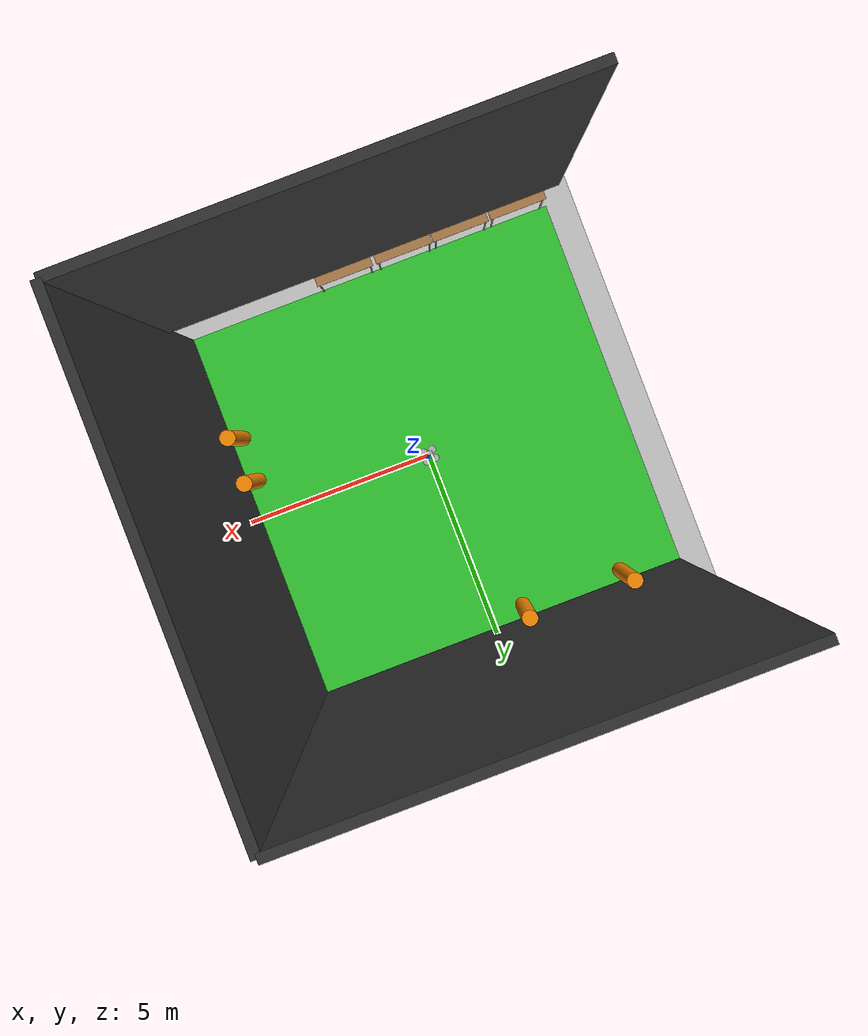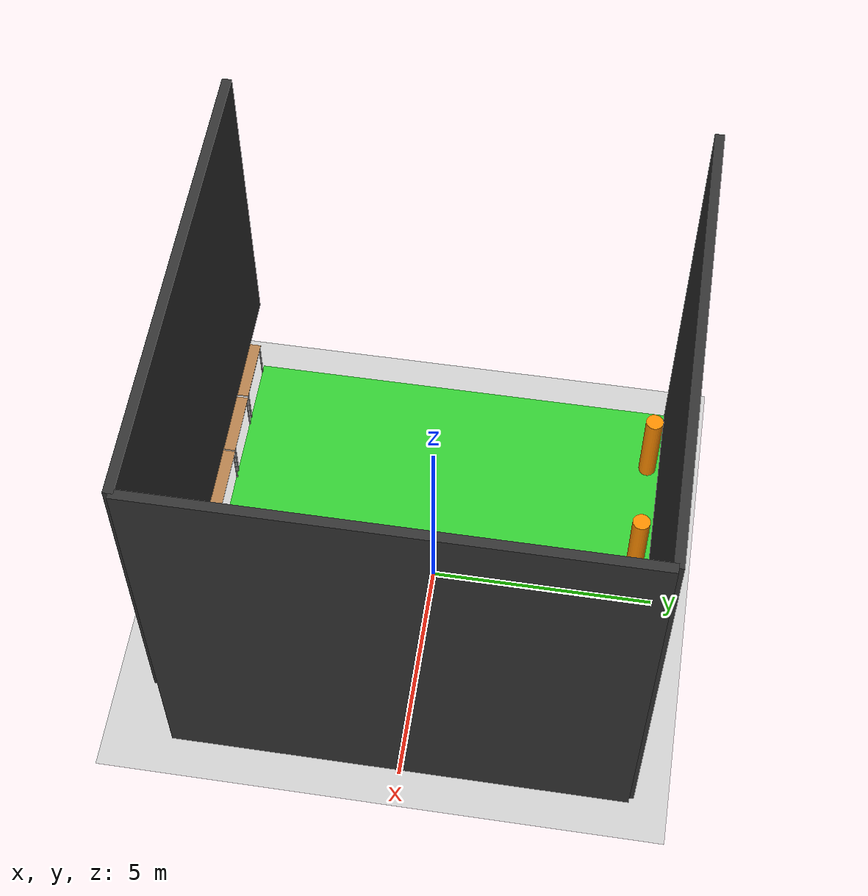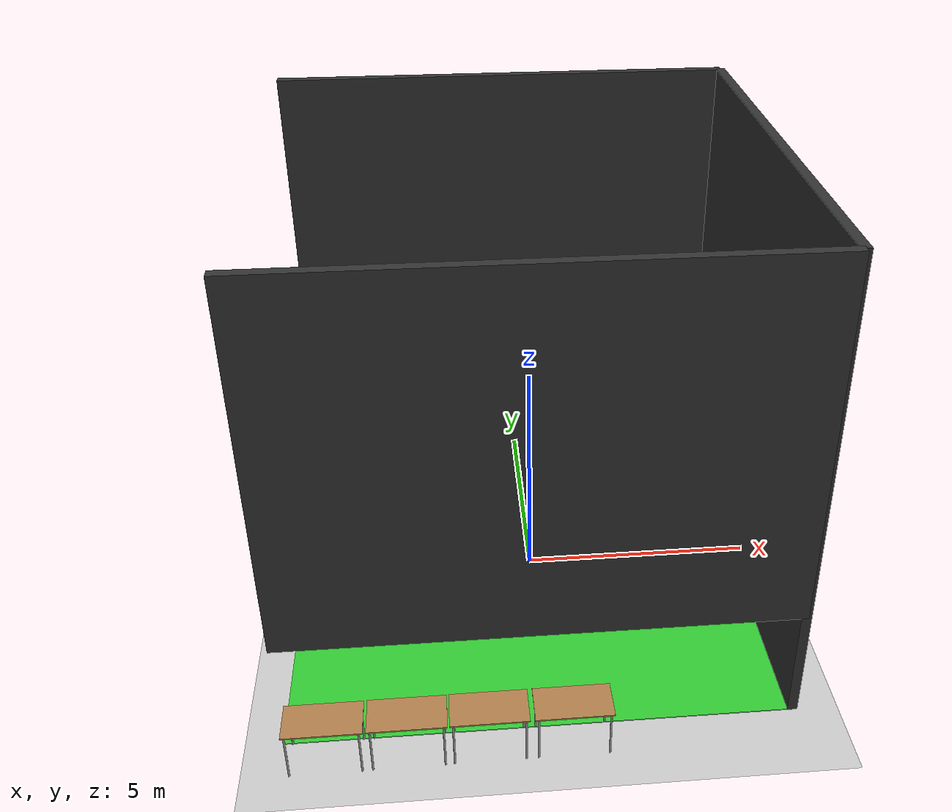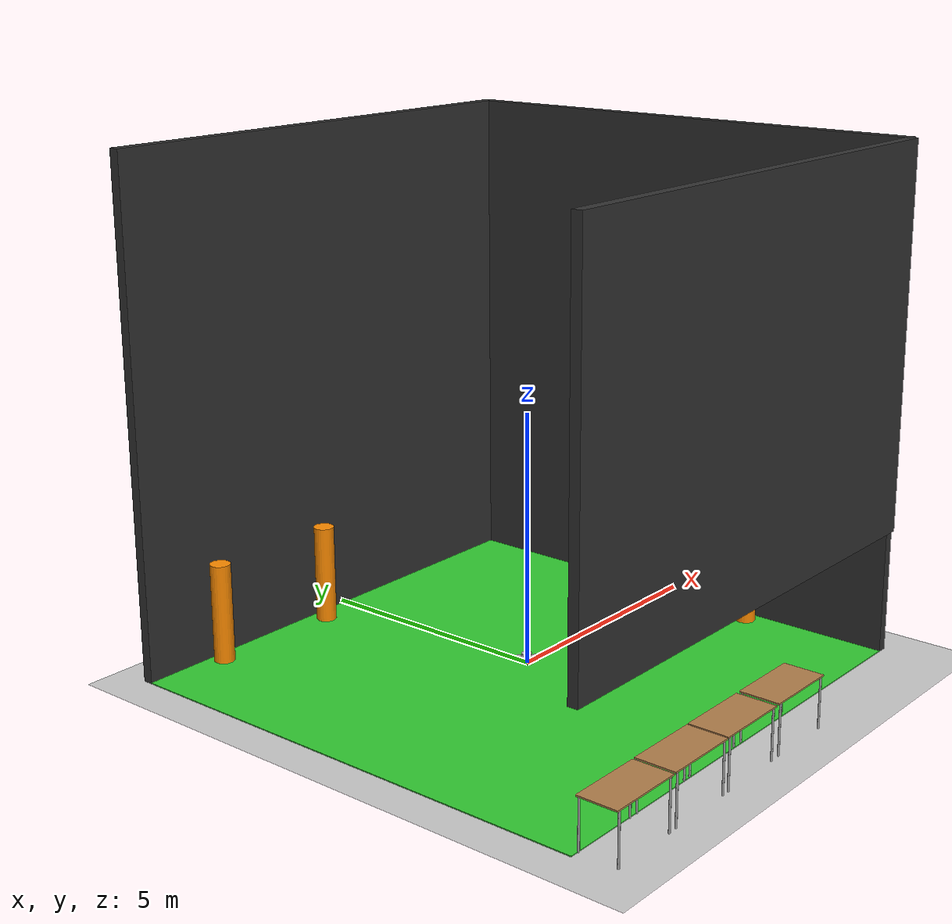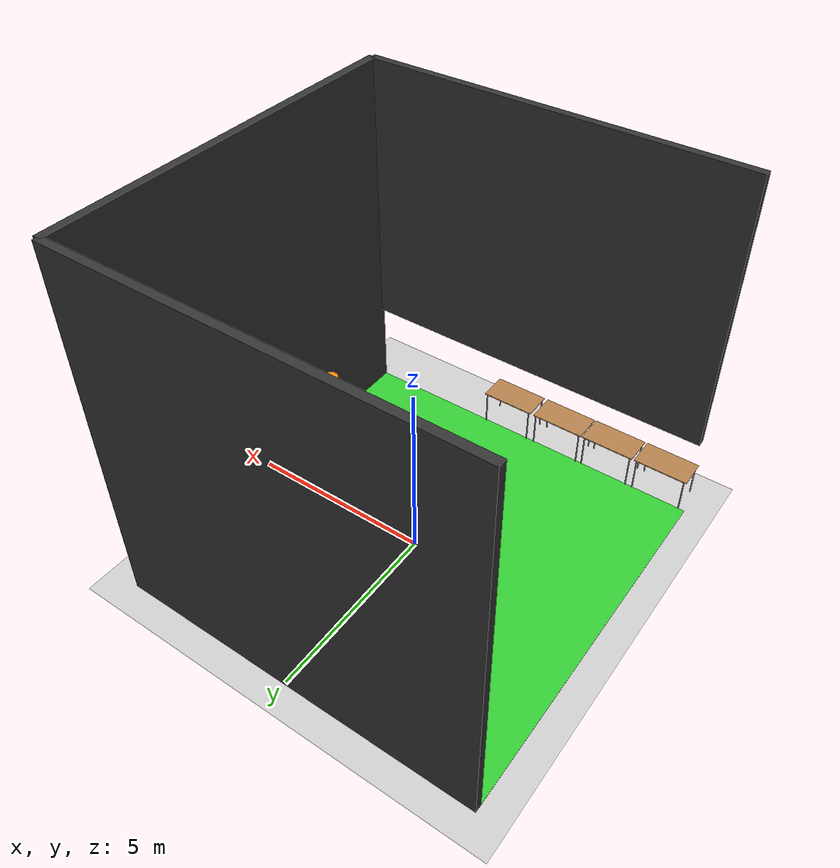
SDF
<sdf version="1.6">
 <world name="default">
  <physics type="ode">
   <max_step_size>0.001</max_step_size>
   <real_time_update_rate>0</real_time_update_rate>
   <ode><solver><type>quick</type><iters>1</iters></solver></ode>
  </physics>
  <scene><ambient>0.4 0.4 0.4 1</ambient><background>0.7 0.7 0.7 1</background><shadows>1</shadows></scene>
  <light name="sun" type="directional">
   <cast_shadows>0</cast_shadows>
   <pose>0 0 10 0 -0 0</pose>
   <diffuse>0.8 0.8 0.8 1</diffuse>
   <specular>0.1 0.1 0.1 1</specular>
   <attenuation>
    <range>1000</range>
    <constant>0.9</constant>
    <linear>0.01</linear>
    <quadratic>0.001</quadratic>
   </attenuation>
   <direction>-0.5 0.5 -1</direction>
  </light>
  <spherical_coordinates>
   <surface_model>EARTH_WGS84</surface_model>
   <latitude_deg>51.990634</latitude_deg>
   <longitude_deg>4.376789</longitude_deg>
   <elevation>0</elevation>
   <heading_deg>150</heading_deg>
  </spherical_coordinates>
  <include><uri>model://ardrone</uri></include>
  <model name="ground_plane">
   <static>1</static>
   <link name="link">
    <collision name="collision">
     <geometry><plane><normal>0 0 1</normal><size>100 100</size></plane></geometry>
     <surface><friction><ode><mu>100</mu><mu2>50</mu2></ode></friction></surface>
    </collision>
    <visual name="visual">
     <cast_shadows>0</cast_shadows>
     <geometry><plane><normal>0 0 1</normal><size>100 100</size></plane></geometry>
     <material>
      <script><uri>file://media/materials/scripts/gazebo.material</uri><name>Gazebo/Grey</name></script>
     </material>
    </visual>
   </link>
  </model>
  <gravity>0 0 -9.8</gravity>
  <magnetic_field>6e-06 2.3e-05 -4.2e-05</magnetic_field>
  <atmosphere type="adiabatic"/>
  <model name="table">
   <static>1</static>
   <link name="link">
    <collision name="surface">
     <pose>0 0 1 0 -0 0</pose>
     <geometry><box><size>1.5 0.8 0.03</size></box></geometry>
     <surface><friction><ode><mu>0.6</mu><mu2>0.6</mu2></ode></friction></surface>
    </collision>
    <visual name="visual1">
     <pose>0 0 1 0 -0 0</pose>
     <geometry><box><size>1.5 0.8 0.03</size></box></geometry>
     <material>
      <script><uri>file://media/materials/scripts/gazebo.material</uri><name>Gazebo/Wood</name></script>
     </material>
    </visual>
    <collision name="front_left_leg">
     <pose>0.68 0.38 0.5 0 -0 0</pose>
     <geometry><cylinder><radius>0.02</radius><length>1</length></cylinder></geometry>
    </collision>
    <visual name="front_left_leg">
     <pose>0.68 0.38 0.5 0 -0 0</pose>
     <geometry><cylinder><radius>0.02</radius><length>1</length></cylinder></geometry>
     <material>
      <script><uri>file://media/materials/scripts/gazebo.material</uri><name>Gazebo/Grey</name></script>
     </material>
    </visual>
    <collision name="front_right_leg">
     <pose>0.68 -0.38 0.5 0 -0 0</pose>
     <geometry><cylinder><radius>0.02</radius><length>1</length></cylinder></geometry>
    </collision>
    <visual name="front_right_leg">
     <pose>0.68 -0.38 0.5 0 -0 0</pose>
     <geometry><cylinder><radius>0.02</radius><length>1</length></cylinder></geometry>
     <material>
      <script><uri>file://media/materials/scripts/gazebo.material</uri><name>Gazebo/Grey</name></script>
     </material>
    </visual>
    <collision name="back_right_leg">
     <pose>-0.68 -0.38 0.5 0 -0 0</pose>
     <geometry><cylinder><radius>0.02</radius><length>1</length></cylinder></geometry>
    </collision>
    <visual name="back_right_leg">
     <pose>-0.68 -0.38 0.5 0 -0 0</pose>
     <geometry><cylinder><radius>0.02</radius><length>1</length></cylinder></geometry>
     <material>
      <script><uri>file://media/materials/scripts/gazebo.material</uri><name>Gazebo/Grey</name></script>
     </material>
    </visual>
    <collision name="back_left_leg">
     <pose>-0.68 0.38 0.5 0 -0 0</pose>
     <geometry><cylinder><radius>0.02</radius><length>1</length></cylinder></geometry>
    </collision>
    <visual name="back_left_leg">
     <pose>-0.68 0.38 0.5 0 -0 0</pose>
     <geometry><cylinder><radius>0.02</radius><length>1</length></cylinder></geometry>
     <material>
      <script><uri>file://media/materials/scripts/gazebo.material</uri><name>Gazebo/Grey</name></script>
     </material>
    </visual>
   </link>
   <pose>-4.32267 -5.41265 0 0 -0 0</pose>
  </model>
  <model name="table_0">
   <static>1</static>
   <link name="link">
    <collision name="surface">
     <pose>0 0 1 0 -0 0</pose>
     <geometry><box><size>1.5 0.8 0.03</size></box></geometry>
     <surface><friction><ode><mu>0.6</mu><mu2>0.6</mu2></ode></friction></surface>
    </collision>
    <visual name="visual1">
     <pose>0 0 1 0 -0 0</pose>
     <geometry><box><size>1.5 0.8 0.03</size></box></geometry>
     <material>
      <script><uri>file://media/materials/scripts/gazebo.material</uri><name>Gazebo/Wood</name></script>
     </material>
    </visual>
    <collision name="front_left_leg">
     <pose>0.68 0.38 0.5 0 -0 0</pose>
     <geometry><cylinder><radius>0.02</radius><length>1</length></cylinder></geometry>
    </collision>
    <visual name="front_left_leg">
     <pose>0.68 0.38 0.5 0 -0 0</pose>
     <geometry><cylinder><radius>0.02</radius><length>1</length></cylinder></geometry>
     <material>
      <script><uri>file://media/materials/scripts/gazebo.material</uri><name>Gazebo/Grey</name></script>
     </material>
    </visual>
    <collision name="front_right_leg">
     <pose>0.68 -0.38 0.5 0 -0 0</pose>
     <geometry><cylinder><radius>0.02</radius><length>1</length></cylinder></geometry>
    </collision>
    <visual name="front_right_leg">
     <pose>0.68 -0.38 0.5 0 -0 0</pose>
     <geometry><cylinder><radius>0.02</radius><length>1</length></cylinder></geometry>
     <material>
      <script><uri>file://media/materials/scripts/gazebo.material</uri><name>Gazebo/Grey</name></script>
     </material>
    </visual>
    <collision name="back_right_leg">
     <pose>-0.68 -0.38 0.5 0 -0 0</pose>
     <geometry><cylinder><radius>0.02</radius><length>1</length></cylinder></geometry>
    </collision>
    <visual name="back_right_leg">
     <pose>-0.68 -0.38 0.5 0 -0 0</pose>
     <geometry><cylinder><radius>0.02</radius><length>1</length></cylinder></geometry>
     <material>
      <script><uri>file://media/materials/scripts/gazebo.material</uri><name>Gazebo/Grey</name></script>
     </material>
    </visual>
    <collision name="back_left_leg">
     <pose>-0.68 0.38 0.5 0 -0 0</pose>
     <geometry><cylinder><radius>0.02</radius><length>1</length></cylinder></geometry>
    </collision>
    <visual name="back_left_leg">
     <pose>-0.68 0.38 0.5 0 -0 0</pose>
     <geometry><cylinder><radius>0.02</radius><length>1</length></cylinder></geometry>
     <material>
      <script><uri>file://media/materials/scripts/gazebo.material</uri><name>Gazebo/Grey</name></script>
     </material>
    </visual>
   </link>
   <pose>-2.76277 -5.40361 0 0 -0 0</pose>
  </model>
  <model name="table_1">
   <static>1</static>
   <link name="link">
    <collision name="surface">
     <pose>0 0 1 0 -0 0</pose>
     <geometry><box><size>1.5 0.8 0.03</size></box></geometry>
     <surface><friction><ode><mu>0.6</mu><mu2>0.6</mu2></ode></friction></surface>
    </collision>
    <visual name="visual1">
     <pose>0 0 1 0 -0 0</pose>
     <geometry><box><size>1.5 0.8 0.03</size></box></geometry>
     <material>
      <script><uri>file://media/materials/scripts/gazebo.material</uri><name>Gazebo/Wood</name></script>
     </material>
    </visual>
    <collision name="front_left_leg">
     <pose>0.68 0.38 0.5 0 -0 0</pose>
     <geometry><cylinder><radius>0.02</radius><length>1</length></cylinder></geometry>
    </collision>
    <visual name="front_left_leg">
     <pose>0.68 0.38 0.5 0 -0 0</pose>
     <geometry><cylinder><radius>0.02</radius><length>1</length></cylinder></geometry>
     <material>
      <script><uri>file://media/materials/scripts/gazebo.material</uri><name>Gazebo/Grey</name></script>
     </material>
    </visual>
    <collision name="front_right_leg">
     <pose>0.68 -0.38 0.5 0 -0 0</pose>
     <geometry><cylinder><radius>0.02</radius><length>1</length></cylinder></geometry>
    </collision>
    <visual name="front_right_leg">
     <pose>0.68 -0.38 0.5 0 -0 0</pose>
     <geometry><cylinder><radius>0.02</radius><length>1</length></cylinder></geometry>
     <material>
      <script><uri>file://media/materials/scripts/gazebo.material</uri><name>Gazebo/Grey</name></script>
     </material>
    </visual>
    <collision name="back_right_leg">
     <pose>-0.68 -0.38 0.5 0 -0 0</pose>
     <geometry><cylinder><radius>0.02</radius><length>1</length></cylinder></geometry>
    </collision>
    <visual name="back_right_leg">
     <pose>-0.68 -0.38 0.5 0 -0 0</pose>
     <geometry><cylinder><radius>0.02</radius><length>1</length></cylinder></geometry>
     <material>
      <script><uri>file://media/materials/scripts/gazebo.material</uri><name>Gazebo/Grey</name></script>
     </material>
    </visual>
    <collision name="back_left_leg">
     <pose>-0.68 0.38 0.5 0 -0 0</pose>
     <geometry><cylinder><radius>0.02</radius><length>1</length></cylinder></geometry>
    </collision>
    <visual name="back_left_leg">
     <pose>-0.68 0.38 0.5 0 -0 0</pose>
     <geometry><cylinder><radius>0.02</radius><length>1</length></cylinder></geometry>
     <material>
      <script><uri>file://media/materials/scripts/gazebo.material</uri><name>Gazebo/Grey</name></script>
     </material>
    </visual>
   </link>
   <pose>-1.22632 -5.39461 0 0 -0 0</pose>
  </model>
  <model name="table_2">
   <static>1</static>
   <link name="link">
    <collision name="surface">
     <pose>0 0 1 0 -0 0</pose>
     <geometry><box><size>1.5 0.8 0.03</size></box></geometry>
     <surface><friction><ode><mu>0.6</mu><mu2>0.6</mu2></ode></friction></surface>
    </collision>
    <visual name="visual1">
     <pose>0 0 1 0 -0 0</pose>
     <geometry><box><size>1.5 0.8 0.03</size></box></geometry>
     <material>
      <script><uri>file://media/materials/scripts/gazebo.material</uri><name>Gazebo/Wood</name></script>
     </material>
    </visual>
    <collision name="front_left_leg">
     <pose>0.68 0.38 0.5 0 -0 0</pose>
     <geometry><cylinder><radius>0.02</radius><length>1</length></cylinder></geometry>
    </collision>
    <visual name="front_left_leg">
     <pose>0.68 0.38 0.5 0 -0 0</pose>
     <geometry><cylinder><radius>0.02</radius><length>1</length></cylinder></geometry>
     <material>
      <script><uri>file://media/materials/scripts/gazebo.material</uri><name>Gazebo/Grey</name></script>
     </material>
    </visual>
    <collision name="front_right_leg">
     <pose>0.68 -0.38 0.5 0 -0 0</pose>
     <geometry><cylinder><radius>0.02</radius><length>1</length></cylinder></geometry>
    </collision>
    <visual name="front_right_leg">
     <pose>0.68 -0.38 0.5 0 -0 0</pose>
     <geometry><cylinder><radius>0.02</radius><length>1</length></cylinder></geometry>
     <material>
      <script><uri>file://media/materials/scripts/gazebo.material</uri><name>Gazebo/Grey</name></script>
     </material>
    </visual>
    <collision name="back_right_leg">
     <pose>-0.68 -0.38 0.5 0 -0 0</pose>
     <geometry><cylinder><radius>0.02</radius><length>1</length></cylinder></geometry>
    </collision>
    <visual name="back_right_leg">
     <pose>-0.68 -0.38 0.5 0 -0 0</pose>
     <geometry><cylinder><radius>0.02</radius><length>1</length></cylinder></geometry>
     <material>
      <script><uri>file://media/materials/scripts/gazebo.material</uri><name>Gazebo/Grey</name></script>
     </material>
    </visual>
    <collision name="back_left_leg">
     <pose>-0.68 0.38 0.5 0 -0 0</pose>
     <geometry><cylinder><radius>0.02</radius><length>1</length></cylinder></geometry>
    </collision>
    <visual name="back_left_leg">
     <pose>-0.68 0.38 0.5 0 -0 0</pose>
     <geometry><cylinder><radius>0.02</radius><length>1</length></cylinder></geometry>
     <material>
      <script><uri>file://media/materials/scripts/gazebo.material</uri><name>Gazebo/Grey</name></script>
     </material>
    </visual>
   </link>
   <pose>0.369055 -5.38977 0 0 -0 0</pose>
  </model>
  <model name="orange_pole">
   <pose>-3.60609 4.59513 1 0 -0 0</pose>
   <static>1</static>
   <link name="link">
    <inertial>
     <mass>1</mass>
     <inertia><ixx>0.083</ixx><ixy>0</ixy><ixz>0</ixz><iyy>0.083</iyy><iyz>0</iyz><izz>0.083</izz></inertia>
    </inertial>
    <collision name="collision">
     <geometry><cylinder><radius>0.3</radius><length>2</length></cylinder></geometry>
    </collision>
    <visual name="visual">
     <geometry><cylinder><radius>0.2</radius><length>2</length></cylinder></geometry>
     <material>
      <ambient>1 0.55 0 1</ambient>
      <diffuse>1 0.55 0 1</diffuse>
      <specular>0.1 0.1 0.1 1</specular>
      <emissive>0 0 0 0</emissive>
     </material>
    </visual>
   </link>
  </model>
  <model name="orange_pole_0">
   <pose>-0.897962 4.54077 1 0 -0 0</pose>
   <static>1</static>
   <link name="link">
    <inertial>
     <mass>1</mass>
     <inertia><ixx>0.083</ixx><ixy>0</ixy><ixz>0</ixz><iyy>0.083</iyy><iyz>0</iyz><izz>0.083</izz></inertia>
    </inertial>
    <collision name="collision">
     <geometry><cylinder><radius>0.3</radius><length>2</length></cylinder></geometry>
    </collision>
    <visual name="visual">
     <geometry><cylinder><radius>0.2</radius><length>2</length></cylinder></geometry>
     <material>
      <ambient>1 0.55 0 1</ambient>
      <diffuse>1 0.55 0 1</diffuse>
      <specular>0.1 0.1 0.1 1</specular>
      <emissive>0 0 0 0</emissive>
     </material>
    </visual>
   </link>
  </model>
  <model name="orange_pole_1">
   <pose>4.41201 -2.15118 1 0 -0 0</pose>
   <static>1</static>
   <link name="link">
    <inertial>
     <mass>1</mass>
     <inertia><ixx>0.083</ixx><ixy>0</ixy><ixz>0</ixz><iyy>0.083</iyy><iyz>0</iyz><izz>0.083</izz></inertia>
    </inertial>
    <collision name="collision">
     <geometry><cylinder><radius>0.3</radius><length>2</length></cylinder></geometry>
    </collision>
    <visual name="visual">
     <geometry><cylinder><radius>0.2</radius><length>2</length></cylinder></geometry>
     <material>
      <ambient>1 0.55 0 1</ambient>
      <diffuse>1 0.55 0 1</diffuse>
      <specular>0.1 0.1 0.1 1</specular>
      <emissive>0 0 0 0</emissive>
     </material>
    </visual>
   </link>
  </model>
  <model name="orange_pole_2">
   <pose>4.42776 -0.974296 1 0 -0 0</pose>
   <static>1</static>
   <link name="link">
    <inertial>
     <mass>1</mass>
     <inertia><ixx>0.083</ixx><ixy>0</ixy><ixz>0</ixz><iyy>0.083</iyy><iyz>0</iyz><izz>0.083</izz></inertia>
    </inertial>
    <collision name="collision">
     <geometry><cylinder><radius>0.3</radius><length>2</length></cylinder></geometry>
    </collision>
    <visual name="visual">
     <geometry><cylinder><radius>0.2</radius><length>2</length></cylinder></geometry>
     <material>
      <ambient>1 0.55 0 1</ambient>
      <diffuse>1 0.55 0 1</diffuse>
      <specular>0.1 0.1 0.1 1</specular>
      <emissive>0 0 0 0</emissive>
     </material>
    </visual>
   </link>
  </model>
  <model name="cyberzoo">
   <static>1</static>
   <pose>-0.184743 -0.031412 0 0 -0 0</pose>
   <link name="floor">
    <pose>0 0 0.01 0 -0 0</pose>
    <visual name="visual">
     <geometry><box><size>10 10 0.02</size></box></geometry>
     <material>
      <ambient>0 0 0 1</ambient>
      <diffuse>0.2 0.8 0.2 1</diffuse>
      <specular>0.2 0.2 0.2 1</specular>
      <emissive>0 0 0 0</emissive>
     </material>
    </visual>
    <collision name="collision"><geometry><box><size>10 10 0.02</size></box></geometry></collision>
   </link>
   <link name="north_wall">
    <pose>0 5 5 0 -0 0</pose>
    <visual name="visual">
     <geometry><box><size>10 0.2 10</size></box></geometry>
     <material>
      <ambient>0 0 0 1</ambient>
      <diffuse>0.2 0.2 0.2 1</diffuse>
      <specular>0 0 0 1</specular>
      <emissive>0 0 0 0</emissive>
     </material>
    </visual>
    <collision name="collision"><geometry><box><size>10 0.2 10</size></box></geometry></collision>
   </link>
   <link name="east_wall">
    <pose>5 0 5 0 -0 0</pose>
    <visual name="visual">
     <geometry><box><size>0.2 10 10</size></box></geometry>
     <material>
      <ambient>0 0 0 1</ambient>
      <diffuse>0.2 0.2 0.2 1</diffuse>
      <specular>0 0 0 1</specular>
      <emissive>0 0 0 0</emissive>
     </material>
    </visual>
    <collision name="collision"><geometry><box><size>0.2 10 10</size></box></geometry></collision>
   </link>
   <link name="south_wall">
    <pose>0 -5 6.25 0 -0 0</pose>
    <visual name="visual">
     <geometry><box><size>10 0.2 7.5</size></box></geometry>
     <material>
      <ambient>0 0 0 1</ambient>
      <diffuse>0.2 0.2 0.2 1</diffuse>
      <specular>0 0 0 1</specular>
      <emissive>0 0 0 0</emissive>
     </material>
    </visual>
    <collision name="collision"><geometry><box><size>10 0.2 7.5</size></box></geometry></collision>
   </link>
  </model>
 </world>
</sdf>

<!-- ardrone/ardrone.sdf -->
<sdf version='1.9'>
  <model name="ardrone">
    <pose>0 0 .1 0 0 0</pose>

    <link name="chassis">

      <inertial><!-- Converted to SI from Paparazzi's ARDrone model for JSBsim -->
        <mass>0.4</mass>
        <inertia>
          <ixx> 0.00678 </ixx>
          <iyy> 0.00678 </iyy>
          <izz> 0.01356 </izz>
          <ixy> 0. </ixy>
          <ixz> 0. </ixz>
          <iyz> 0. </iyz>
        </inertia>
      </inertial>

      <collision name="collision">
        <geometry>
          <box>
            <size>0.4 0.4 0.05</size>
          </box>
        </geometry>
      </collision>

      <visual name="visual">
        <geometry>
          <box>
            <size>0.2 0.2 0.05</size>
          </box>
        </geometry>
      </visual>

      <sensor name="contactsensor" type="contact">
        <contact>
          <collision>collision</collision>
        </contact>
      </sensor>
    </link>

    <!-- MOTORS -->
    <link name="nw_motor">
      <pose>0.12 0.12 0 0 0 0</pose>
      <inertial>
        <mass>0.01</mass>
        <inertia>
          <ixx>0.0001</ixx>
          <iyy>0.0001</iyy>
          <izz>0.0001</izz>
          <ixy>0</ixy>
          <iyz>0</iyz>
          <ixz>0</ixz>
        </inertia>
      </inertial>
      <visual name="visual">
        <geometry>
          <cylinder>
            <radius>0.10</radius>
            <length>0.05</length>
          </cylinder>
        </geometry>
      </visual>
    </link>

    <joint type="fixed" name="nw_motor_joint">
      <parent>chassis</parent>
      <child>nw_motor</child>
    </joint>

    <link name="se_motor">
      <pose>-0.12 -0.12 0 0 0 0</pose>
      <inertial>
        <mass>0.01</mass>
        <inertia>
          <ixx>0.0001</ixx>
          <iyy>0.0001</iyy>
          <izz>0.0001</izz>
          <ixy>0</ixy>
          <iyz>0</iyz>
          <ixz>0</ixz>
        </inertia>
      </inertial>
      <visual name="visual">
        <geometry>
          <cylinder>
            <radius>0.10</radius>
            <length>0.05</length>
          </cylinder>
        </geometry>
      </visual>
    </link>

    <joint type="fixed" name="se_motor_joint">
      <parent>chassis</parent>
      <child>se_motor</child>
    </joint>

    <link name="ne_motor">
      <pose>0.12 -0.12 0 0 0 0</pose>
      <inertial>
        <mass>0.01</mass>
        <inertia>
          <ixx>0.0001</ixx>
          <iyy>0.0001</iyy>
          <izz>0.0001</izz>
          <ixy>0</ixy>
          <iyz>0</iyz>
          <ixz>0</ixz>
        </inertia>
      </inertial>
      <visual name="visual">
        <geometry>
          <cylinder>
            <radius>0.10</radius>
            <length>0.05</length>
          </cylinder>
        </geometry>
      </visual>
    </link>

    <joint type="fixed" name="ne_motor_joint">
      <parent>chassis</parent>
      <child>ne_motor</child>
    </joint>

    <link name="sw_motor">
      <pose>-0.12 0.12 0 0 0 0</pose>
      <inertial>
        <mass>0.01</mass>
        <inertia>
          <ixx>0.0001</ixx>
          <iyy>0.0001</iyy>
          <izz>0.0001</izz>
          <ixy>0</ixy>
          <iyz>0</iyz>
          <ixz>0</ixz>
        </inertia>
      </inertial>
      <visual name="visual">
        <geometry>
          <cylinder>
            <radius>0.10</radius>
            <length>0.05</length>
          </cylinder>
        </geometry>
      </visual>
    </link>

    <joint type="fixed" name="sw_motor_joint">
      <parent>chassis</parent>
      <child>sw_motor</child>
    </joint>

    <!-- CAMERAS -->

    <link name="front_camera">
      <pose>0.15 0 0 0 0 0</pose>
      <inertial>
        <mass>0.001</mass>
        <inertia>
          <ixx>0.0001</ixx>
          <iyy>0.0001</iyy>
          <izz>0.0001</izz>
          <ixy>0</ixy>
          <iyz>0</iyz>
          <ixz>0</ixz>
        </inertia>
      </inertial>
      <sensor type="camera" name="front_camera">
        <update_rate>30.0</update_rate>
        <camera name="front_camera">
          <horizontal_fov>1.3962634</horizontal_fov>
          <image>
            <width>1280</width>
            <height>720</height>
            <format>R8G8B8</format>
          </image>
          <clip>
            <near>0.02</near>
            <far>300</far>
          </clip>
          <noise>
            <type>gaussian</type>
            <!-- Noise is sampled independently per pixel on each frame. That pixel's
              noise value is added to each of its color channels, which at that point lie
              in the range [0,1]. -->
            <mean>0.0</mean>
            <stddev>0.007</stddev>
          </noise>
        </camera>
      </sensor>
    </link>

    <joint name="front_camera_joint" type="fixed">
      <parent>chassis</parent>
      <child>front_camera</child>
    </joint>

    <link name="bottom_camera">
      <pose>0 0 -.03 0 1.57 0</pose>
      <inertial>
        <mass>0.001</mass>
        <inertia>
          <ixx>0.0001</ixx>
          <iyy>0.0001</iyy>
          <izz>0.0001</izz>
          <ixy>0</ixy>
          <iyz>0</iyz>
          <ixz>0</ixz>
        </inertia>
      </inertial>
      <sensor type="camera" name="bottom_camera">
        <update_rate>30.0</update_rate>
        <camera name="bottom_camera">
          <horizontal_fov>1.3962634</horizontal_fov>
          <image>
            <width>320</width>
            <height>240</height>
            <format>R8G8B8</format>
          </image>
          <clip>
            <near>0.02</near>
            <far>300</far>
          </clip>
          <noise>
            <type>gaussian</type>
            <!-- Noise is sampled independently per pixel on each frame. That pixel's
              noise value is added to each of its color channels, which at that point lie
              in the range [0,1]. -->
            <mean>0.0</mean>
            <stddev>0.007</stddev>
          </noise>
        </camera>
      </sensor>
    </link>

    <joint name="bottom_camera_joint" type="fixed">
      <parent>chassis</parent>
      <child>bottom_camera</child>
    </joint>
  </model>
</sdf>
